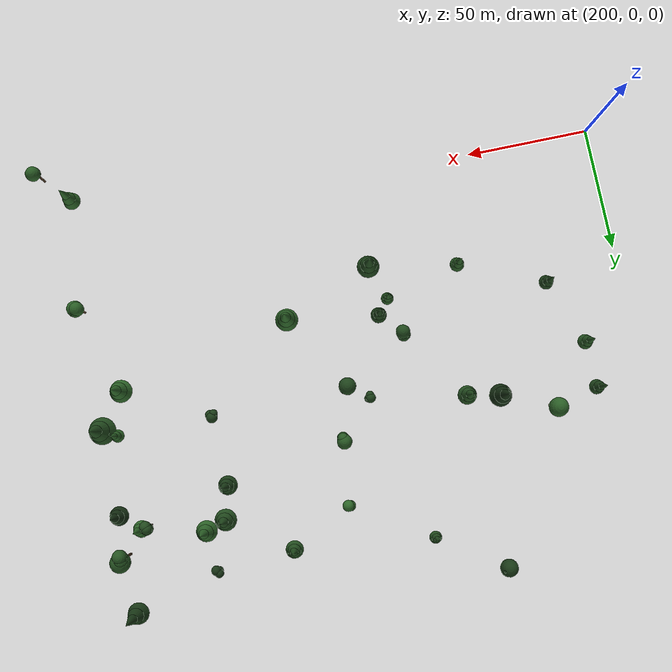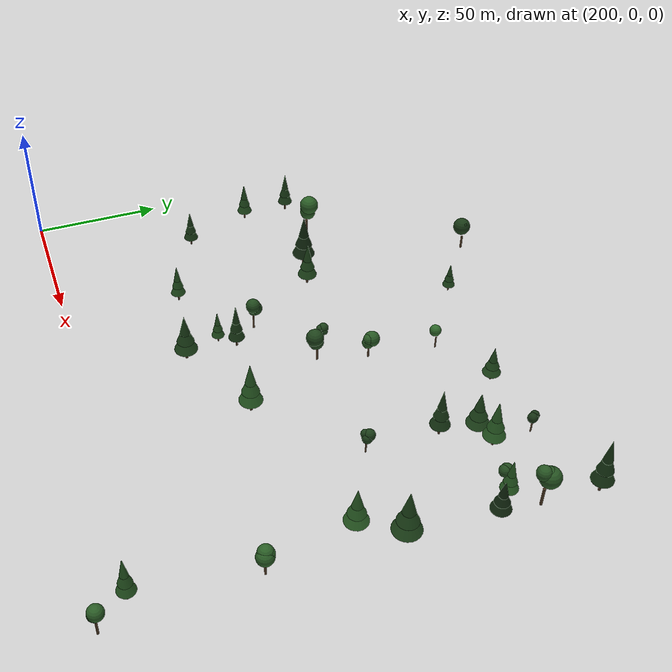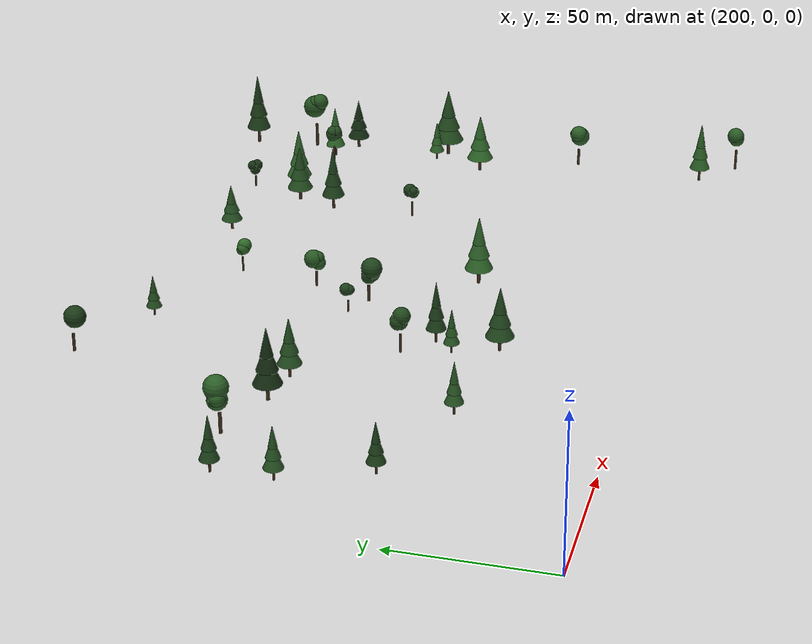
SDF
<sdf version="1.9">
 <world name="detection_world_terrain_train_ir">
  <model name="tree_0">
   <static>true</static>
   <pose>324.40 104.27 10.50 0 0 0.39</pose>
   <link name="link">
    <visual name="trunk">
     <pose>0 0 2.46 0 0 0</pose>
     <geometry><cylinder><radius>0.37</radius><length>4.92</length></cylinder></geometry>
     <material><ambient>0.28 0.2 0.12 1</ambient><diffuse>0.28 0.2 0.12 1</diffuse></material>
    </visual>
    <visual name="canopy0">
     <pose>0.30 -0.73 7.82 0 0 0</pose>
     <geometry><sphere><radius>2.28</radius></sphere></geometry>
     <material><ambient>0.157 0.349 0.140 1</ambient><diffuse>0.157 0.349 0.140 1</diffuse></material>
    </visual>
    <visual name="canopy1">
     <pose>0.46 -0.46 9.49 0 0 0</pose>
     <geometry><sphere><radius>2.21</radius></sphere></geometry>
     <material><ambient>0.157 0.349 0.140 1</ambient><diffuse>0.157 0.349 0.140 1</diffuse></material>
    </visual>
    <visual name="canopy2">
     <pose>0.65 0.83 9.14 0 0 0</pose>
     <geometry><sphere><radius>2.95</radius></sphere></geometry>
     <material><ambient>0.157 0.349 0.140 1</ambient><diffuse>0.157 0.349 0.140 1</diffuse></material>
    </visual>
   </link>
  </model>
  <model name="tree_1">
   <static>true</static>
   <pose>382.52 127.61 16.47 0 0 1.32</pose>
   <link name="link">
    <visual name="trunk">
     <pose>0 0 3.48 0 0 0</pose>
     <geometry><cylinder><radius>0.49</radius><length>6.96</length></cylinder></geometry>
     <material><ambient>0.28 0.2 0.12 1</ambient><diffuse>0.28 0.2 0.12 1</diffuse></material>
    </visual>
    <visual name="canopy0">
     <pose>0 0 8.95 0 0 0</pose>
     <geometry><cone><radius>4.07</radius><length>8.35</length></cone></geometry>
     <material><ambient>0.184 0.409 0.164 1</ambient><diffuse>0.184 0.409 0.164 1</diffuse></material>
    </visual>
    <visual name="canopy1">
     <pose>0 0 12.92 0 0 0</pose>
     <geometry><cone><radius>3.05</radius><length>8.35</length></cone></geometry>
     <material><ambient>0.184 0.409 0.164 1</ambient><diffuse>0.184 0.409 0.164 1</diffuse></material>
    </visual>
    <visual name="canopy2">
     <pose>0 0 16.90 0 0 0</pose>
     <geometry><cone><radius>1.83</radius><length>8.35</length></cone></geometry>
     <material><ambient>0.184 0.409 0.164 1</ambient><diffuse>0.184 0.409 0.164 1</diffuse></material>
    </visual>
   </link>
  </model>
  <model name="tree_2">
   <static>true</static>
   <pose>327.99 130.04 10.75 0 0 2.35</pose>
   <link name="link">
    <visual name="trunk">
     <pose>0 0 2.51 0 0 0</pose>
     <geometry><cylinder><radius>0.29</radius><length>5.02</length></cylinder></geometry>
     <material><ambient>0.28 0.2 0.12 1</ambient><diffuse>0.28 0.2 0.12 1</diffuse></material>
    </visual>
    <visual name="canopy0">
     <pose>-0.04 0.71 8.39 0 0 0</pose>
     <geometry><sphere><radius>2.11</radius></sphere></geometry>
     <material><ambient>0.182 0.406 0.162 1</ambient><diffuse>0.182 0.406 0.162 1</diffuse></material>
    </visual>
    <visual name="canopy1">
     <pose>0.45 0.60 7.94 0 0 0</pose>
     <geometry><sphere><radius>1.74</radius></sphere></geometry>
     <material><ambient>0.182 0.406 0.162 1</ambient><diffuse>0.182 0.406 0.162 1</diffuse></material>
    </visual>
    <visual name="canopy2">
     <pose>-0.64 0.36 9.15 0 0 0</pose>
     <geometry><sphere><radius>2.23</radius></sphere></geometry>
     <material><ambient>0.182 0.406 0.162 1</ambient><diffuse>0.182 0.406 0.162 1</diffuse></material>
    </visual>
   </link>
  </model>
  <model name="tree_3">
   <static>true</static>
   <pose>374.87 125.05 15.91 0 0 2.26</pose>
   <link name="link">
    <visual name="trunk">
     <pose>0 0 3.11 0 0 0</pose>
     <geometry><cylinder><radius>0.51</radius><length>6.23</length></cylinder></geometry>
     <material><ambient>0.28 0.2 0.12 1</ambient><diffuse>0.28 0.2 0.12 1</diffuse></material>
    </visual>
    <visual name="canopy0">
     <pose>0 0 8.01 0 0 0</pose>
     <geometry><cone><radius>4.21</radius><length>7.47</length></cone></geometry>
     <material><ambient>0.138 0.306 0.123 1</ambient><diffuse>0.138 0.306 0.123 1</diffuse></material>
    </visual>
    <visual name="canopy1">
     <pose>0 0 11.57 0 0 0</pose>
     <geometry><cone><radius>3.16</radius><length>7.47</length></cone></geometry>
     <material><ambient>0.138 0.306 0.123 1</ambient><diffuse>0.138 0.306 0.123 1</diffuse></material>
    </visual>
    <visual name="canopy2">
     <pose>0 0 15.13 0 0 0</pose>
     <geometry><cone><radius>1.89</radius><length>7.47</length></cone></geometry>
     <material><ambient>0.138 0.306 0.123 1</ambient><diffuse>0.138 0.306 0.123 1</diffuse></material>
    </visual>
   </link>
  </model>
  <model name="tree_4">
   <static>true</static>
   <pose>273.44 97.40 6.11 0 0 0.81</pose>
   <link name="link">
    <visual name="trunk">
     <pose>0 0 3.23 0 0 0</pose>
     <geometry><cylinder><radius>0.45</radius><length>6.46</length></cylinder></geometry>
     <material><ambient>0.28 0.2 0.12 1</ambient><diffuse>0.28 0.2 0.12 1</diffuse></material>
    </visual>
    <visual name="canopy0">
     <pose>0 0 8.30 0 0 0</pose>
     <geometry><cone><radius>3.77</radius><length>7.75</length></cone></geometry>
     <material><ambient>0.141 0.313 0.125 1</ambient><diffuse>0.141 0.313 0.125 1</diffuse></material>
    </visual>
    <visual name="canopy1">
     <pose>0 0 12.00 0 0 0</pose>
     <geometry><cone><radius>2.83</radius><length>7.75</length></cone></geometry>
     <material><ambient>0.141 0.313 0.125 1</ambient><diffuse>0.141 0.313 0.125 1</diffuse></material>
    </visual>
    <visual name="canopy2">
     <pose>0 0 15.69 0 0 0</pose>
     <geometry><cone><radius>1.70</radius><length>7.75</length></cone></geometry>
     <material><ambient>0.141 0.313 0.125 1</ambient><diffuse>0.141 0.313 0.125 1</diffuse></material>
    </visual>
   </link>
  </model>
  <model name="tree_5">
   <static>true</static>
   <pose>351.71 141.62 13.55 0 0 1.71</pose>
   <link name="link">
    <visual name="trunk">
     <pose>0 0 2.56 0 0 0</pose>
     <geometry><cylinder><radius>0.41</radius><length>5.13</length></cylinder></geometry>
     <material><ambient>0.28 0.2 0.12 1</ambient><diffuse>0.28 0.2 0.12 1</diffuse></material>
    </visual>
    <visual name="canopy0">
     <pose>0 0 6.59 0 0 0</pose>
     <geometry><cone><radius>3.41</radius><length>6.15</length></cone></geometry>
     <material><ambient>0.143 0.319 0.128 1</ambient><diffuse>0.143 0.319 0.128 1</diffuse></material>
    </visual>
    <visual name="canopy1">
     <pose>0 0 9.52 0 0 0</pose>
     <geometry><cone><radius>2.56</radius><length>6.15</length></cone></geometry>
     <material><ambient>0.143 0.319 0.128 1</ambient><diffuse>0.143 0.319 0.128 1</diffuse></material>
    </visual>
    <visual name="canopy2">
     <pose>0 0 12.45 0 0 0</pose>
     <geometry><cone><radius>1.53</radius><length>6.15</length></cone></geometry>
     <material><ambient>0.143 0.319 0.128 1</ambient><diffuse>0.143 0.319 0.128 1</diffuse></material>
    </visual>
   </link>
  </model>
  <model name="tree_6">
   <static>true</static>
   <pose>221.95 86.11 2.88 0 0 4.58</pose>
   <link name="link">
    <visual name="trunk">
     <pose>0 0 2.89 0 0 0</pose>
     <geometry><cylinder><radius>0.36</radius><length>5.79</length></cylinder></geometry>
     <material><ambient>0.28 0.2 0.12 1</ambient><diffuse>0.28 0.2 0.12 1</diffuse></material>
    </visual>
    <visual name="canopy0">
     <pose>0 0 7.44 0 0 0</pose>
     <geometry><cone><radius>3.01</radius><length>6.95</length></cone></geometry>
     <material><ambient>0.149 0.332 0.133 1</ambient><diffuse>0.149 0.332 0.133 1</diffuse></material>
    </visual>
    <visual name="canopy1">
     <pose>0 0 10.75 0 0 0</pose>
     <geometry><cone><radius>2.26</radius><length>6.95</length></cone></geometry>
     <material><ambient>0.149 0.332 0.133 1</ambient><diffuse>0.149 0.332 0.133 1</diffuse></material>
    </visual>
    <visual name="canopy2">
     <pose>0 0 14.06 0 0 0</pose>
     <geometry><cone><radius>1.35</radius><length>6.95</length></cone></geometry>
     <material><ambient>0.149 0.332 0.133 1</ambient><diffuse>0.149 0.332 0.133 1</diffuse></material>
    </visual>
   </link>
  </model>
  <model name="tree_8">
   <static>true</static>
   <pose>380.99 142.86 16.07 0 0 4.55</pose>
   <link name="link">
    <visual name="trunk">
     <pose>0 0 1.87 0 0 0</pose>
     <geometry><cylinder><radius>0.30</radius><length>3.74</length></cylinder></geometry>
     <material><ambient>0.28 0.2 0.12 1</ambient><diffuse>0.28 0.2 0.12 1</diffuse></material>
    </visual>
    <visual name="canopy0">
     <pose>0.41 0.51 7.64 0 0 0</pose>
     <geometry><sphere><radius>1.86</radius></sphere></geometry>
     <material><ambient>0.091 0.202 0.081 1</ambient><diffuse>0.091 0.202 0.081 1</diffuse></material>
    </visual>
    <visual name="canopy1">
     <pose>-0.64 -0.62 7.58 0 0 0</pose>
     <geometry><sphere><radius>1.71</radius></sphere></geometry>
     <material><ambient>0.091 0.202 0.081 1</ambient><diffuse>0.091 0.202 0.081 1</diffuse></material>
    </visual>
    <visual name="canopy2">
     <pose>0.05 -0.35 6.32 0 0 0</pose>
     <geometry><sphere><radius>1.76</radius></sphere></geometry>
     <material><ambient>0.091 0.202 0.081 1</ambient><diffuse>0.091 0.202 0.081 1</diffuse></material>
    </visual>
   </link>
  </model>
  <model name="tree_13">
   <static>true</static>
   <pose>272.69 165.85 6.06 0 0 3.37</pose>
   <link name="link">
    <visual name="trunk">
     <pose>0 0 2.90 0 0 0</pose>
     <geometry><cylinder><radius>0.44</radius><length>5.79</length></cylinder></geometry>
     <material><ambient>0.28 0.2 0.12 1</ambient><diffuse>0.28 0.2 0.12 1</diffuse></material>
    </visual>
    <visual name="canopy0">
     <pose>-0.51 0.04 11.99 0 0 0</pose>
     <geometry><sphere><radius>2.22</radius></sphere></geometry>
     <material><ambient>0.104 0.231 0.092 1</ambient><diffuse>0.104 0.231 0.092 1</diffuse></material>
    </visual>
    <visual name="canopy1">
     <pose>-0.06 0.89 11.63 0 0 0</pose>
     <geometry><sphere><radius>3.45</radius></sphere></geometry>
     <material><ambient>0.104 0.231 0.092 1</ambient><diffuse>0.104 0.231 0.092 1</diffuse></material>
    </visual>
    <visual name="canopy2">
     <pose>-0.88 0.89 12.56 0 0 0</pose>
     <geometry><sphere><radius>2.22</radius></sphere></geometry>
     <material><ambient>0.104 0.231 0.092 1</ambient><diffuse>0.104 0.231 0.092 1</diffuse></material>
    </visual>
   </link>
  </model>
  <model name="tree_15">
   <static>true</static>
   <pose>371.53 112.39 15.48 0 0 2.10</pose>
   <link name="link">
    <visual name="trunk">
     <pose>0 0 3.54 0 0 0</pose>
     <geometry><cylinder><radius>0.44</radius><length>7.08</length></cylinder></geometry>
     <material><ambient>0.28 0.2 0.12 1</ambient><diffuse>0.28 0.2 0.12 1</diffuse></material>
    </visual>
    <visual name="canopy0">
     <pose>0 0 9.10 0 0 0</pose>
     <geometry><cone><radius>3.70</radius><length>8.50</length></cone></geometry>
     <material><ambient>0.116 0.257 0.103 1</ambient><diffuse>0.116 0.257 0.103 1</diffuse></material>
    </visual>
    <visual name="canopy1">
     <pose>0 0 13.15 0 0 0</pose>
     <geometry><cone><radius>2.77</radius><length>8.50</length></cone></geometry>
     <material><ambient>0.116 0.257 0.103 1</ambient><diffuse>0.116 0.257 0.103 1</diffuse></material>
    </visual>
    <visual name="canopy2">
     <pose>0 0 17.20 0 0 0</pose>
     <geometry><cone><radius>1.66</radius><length>8.50</length></cone></geometry>
     <material><ambient>0.116 0.257 0.103 1</ambient><diffuse>0.116 0.257 0.103 1</diffuse></material>
    </visual>
   </link>
  </model>
  <model name="tree_20">
   <static>true</static>
   <pose>301.43 39.69 7.95 0 0 2.02</pose>
   <link name="link">
    <visual name="trunk">
     <pose>0 0 3.49 0 0 0</pose>
     <geometry><cylinder><radius>0.53</radius><length>6.99</length></cylinder></geometry>
     <material><ambient>0.28 0.2 0.12 1</ambient><diffuse>0.28 0.2 0.12 1</diffuse></material>
    </visual>
    <visual name="canopy0">
     <pose>0 0 8.98 0 0 0</pose>
     <geometry><cone><radius>4.44</radius><length>8.38</length></cone></geometry>
     <material><ambient>0.127 0.282 0.113 1</ambient><diffuse>0.127 0.282 0.113 1</diffuse></material>
    </visual>
    <visual name="canopy1">
     <pose>0 0 12.98 0 0 0</pose>
     <geometry><cone><radius>3.33</radius><length>8.38</length></cone></geometry>
     <material><ambient>0.127 0.282 0.113 1</ambient><diffuse>0.127 0.282 0.113 1</diffuse></material>
    </visual>
    <visual name="canopy2">
     <pose>0 0 16.97 0 0 0</pose>
     <geometry><cone><radius>2.00</radius><length>8.38</length></cone></geometry>
     <material><ambient>0.127 0.282 0.113 1</ambient><diffuse>0.127 0.282 0.113 1</diffuse></material>
    </visual>
   </link>
  </model>
  <model name="tree_21">
   <static>true</static>
   <pose>371.61 85.12 15.74 0 0 2.02</pose>
   <link name="link">
    <visual name="trunk">
     <pose>0 0 2.46 0 0 0</pose>
     <geometry><cylinder><radius>0.30</radius><length>4.91</length></cylinder></geometry>
     <material><ambient>0.28 0.2 0.12 1</ambient><diffuse>0.28 0.2 0.12 1</diffuse></material>
    </visual>
    <visual name="canopy0">
     <pose>-0.47 -0.75 8.15 0 0 0</pose>
     <geometry><sphere><radius>1.95</radius></sphere></geometry>
     <material><ambient>0.108 0.240 0.096 1</ambient><diffuse>0.108 0.240 0.096 1</diffuse></material>
    </visual>
    <visual name="canopy1">
     <pose>-0.10 0.59 9.05 0 0 0</pose>
     <geometry><sphere><radius>1.66</radius></sphere></geometry>
     <material><ambient>0.108 0.240 0.096 1</ambient><diffuse>0.108 0.240 0.096 1</diffuse></material>
    </visual>
    <visual name="canopy2">
     <pose>0.65 -0.65 8.92 0 0 0</pose>
     <geometry><sphere><radius>2.18</radius></sphere></geometry>
     <material><ambient>0.108 0.240 0.096 1</ambient><diffuse>0.108 0.240 0.096 1</diffuse></material>
    </visual>
   </link>
  </model>
  <model name="tree_22">
   <static>true</static>
   <pose>412.79 82.79 21.17 0 0 0.90</pose>
   <link name="link">
    <visual name="trunk">
     <pose>0 0 3.87 0 0 0</pose>
     <geometry><cylinder><radius>0.62</radius><length>7.73</length></cylinder></geometry>
     <material><ambient>0.28 0.2 0.12 1</ambient><diffuse>0.28 0.2 0.12 1</diffuse></material>
    </visual>
    <visual name="canopy0">
     <pose>0 0 9.94 0 0 0</pose>
     <geometry><cone><radius>5.16</radius><length>9.28</length></cone></geometry>
     <material><ambient>0.137 0.303 0.121 1</ambient><diffuse>0.137 0.303 0.121 1</diffuse></material>
    </visual>
    <visual name="canopy1">
     <pose>0 0 14.36 0 0 0</pose>
     <geometry><cone><radius>3.87</radius><length>9.28</length></cone></geometry>
     <material><ambient>0.137 0.303 0.121 1</ambient><diffuse>0.137 0.303 0.121 1</diffuse></material>
    </visual>
    <visual name="canopy2">
     <pose>0 0 18.77 0 0 0</pose>
     <geometry><cone><radius>2.32</radius><length>9.28</length></cone></geometry>
     <material><ambient>0.137 0.303 0.121 1</ambient><diffuse>0.137 0.303 0.121 1</diffuse></material>
    </visual>
   </link>
  </model>
  <model name="tree_23">
   <static>true</static>
   <pose>240.82 108.10 3.84 0 0 3.57</pose>
   <link name="link">
    <visual name="trunk">
     <pose>0 0 3.35 0 0 0</pose>
     <geometry><cylinder><radius>0.51</radius><length>6.70</length></cylinder></geometry>
     <material><ambient>0.28 0.2 0.12 1</ambient><diffuse>0.28 0.2 0.12 1</diffuse></material>
    </visual>
    <visual name="canopy0">
     <pose>-0.67 -0.73 14.69 0 0 0</pose>
     <geometry><sphere><radius>3.80</radius></sphere></geometry>
     <material><ambient>0.167 0.370 0.148 1</ambient><diffuse>0.167 0.370 0.148 1</diffuse></material>
    </visual>
    <visual name="canopy1">
     <pose>-0.16 -0.59 10.91 0 0 0</pose>
     <geometry><sphere><radius>3.15</radius></sphere></geometry>
     <material><ambient>0.167 0.370 0.148 1</ambient><diffuse>0.167 0.370 0.148 1</diffuse></material>
    </visual>
    <visual name="canopy2">
     <pose>1.04 -0.76 12.05 0 0 0</pose>
     <geometry><sphere><radius>2.60</radius></sphere></geometry>
     <material><ambient>0.167 0.370 0.148 1</ambient><diffuse>0.167 0.370 0.148 1</diffuse></material>
    </visual>
   </link>
  </model>
  <model name="tree_24">
   <static>true</static>
   <pose>232.02 59.46 2.93 0 0 5.61</pose>
   <link name="link">
    <visual name="trunk">
     <pose>0 0 2.79 0 0 0</pose>
     <geometry><cylinder><radius>0.35</radius><length>5.57</length></cylinder></geometry>
     <material><ambient>0.28 0.2 0.12 1</ambient><diffuse>0.28 0.2 0.12 1</diffuse></material>
    </visual>
    <visual name="canopy0">
     <pose>0 0 7.17 0 0 0</pose>
     <geometry><cone><radius>2.88</radius><length>6.69</length></cone></geometry>
     <material><ambient>0.114 0.253 0.101 1</ambient><diffuse>0.114 0.253 0.101 1</diffuse></material>
    </visual>
    <visual name="canopy1">
     <pose>0 0 10.35 0 0 0</pose>
     <geometry><cone><radius>2.16</radius><length>6.69</length></cone></geometry>
     <material><ambient>0.114 0.253 0.101 1</ambient><diffuse>0.114 0.253 0.101 1</diffuse></material>
    </visual>
    <visual name="canopy2">
     <pose>0 0 13.54 0 0 0</pose>
     <geometry><cone><radius>1.30</radius><length>6.69</length></cone></geometry>
     <material><ambient>0.114 0.253 0.101 1</ambient><diffuse>0.114 0.253 0.101 1</diffuse></material>
    </visual>
   </link>
  </model>
  <model name="tree_25">
   <static>true</static>
   <pose>408.15 85.67 20.79 0 0 5.92</pose>
   <link name="link">
    <visual name="trunk">
     <pose>0 0 2.26 0 0 0</pose>
     <geometry><cylinder><radius>0.29</radius><length>4.52</length></cylinder></geometry>
     <material><ambient>0.28 0.2 0.12 1</ambient><diffuse>0.28 0.2 0.12 1</diffuse></material>
    </visual>
    <visual name="canopy0">
     <pose>0 0 5.81 0 0 0</pose>
     <geometry><cone><radius>2.44</radius><length>5.42</length></cone></geometry>
     <material><ambient>0.176 0.390 0.156 1</ambient><diffuse>0.176 0.390 0.156 1</diffuse></material>
    </visual>
    <visual name="canopy1">
     <pose>0 0 8.39 0 0 0</pose>
     <geometry><cone><radius>1.83</radius><length>5.42</length></cone></geometry>
     <material><ambient>0.176 0.390 0.156 1</ambient><diffuse>0.176 0.390 0.156 1</diffuse></material>
    </visual>
    <visual name="canopy2">
     <pose>0 0 10.98 0 0 0</pose>
     <geometry><cone><radius>1.10</radius><length>5.42</length></cone></geometry>
     <material><ambient>0.176 0.390 0.156 1</ambient><diffuse>0.176 0.390 0.156 1</diffuse></material>
    </visual>
   </link>
  </model>
  <model name="tree_26">
   <static>true</static>
   <pose>266.00 45.36 4.84 0 0 4.91</pose>
   <link name="link">
    <visual name="trunk">
     <pose>0 0 2.87 0 0 0</pose>
     <geometry><cylinder><radius>0.35</radius><length>5.73</length></cylinder></geometry>
     <material><ambient>0.28 0.2 0.12 1</ambient><diffuse>0.28 0.2 0.12 1</diffuse></material>
    </visual>
    <visual name="canopy0">
     <pose>0 0 7.37 0 0 0</pose>
     <geometry><cone><radius>2.88</radius><length>6.88</length></cone></geometry>
     <material><ambient>0.159 0.353 0.141 1</ambient><diffuse>0.159 0.353 0.141 1</diffuse></material>
    </visual>
    <visual name="canopy1">
     <pose>0 0 10.65 0 0 0</pose>
     <geometry><cone><radius>2.16</radius><length>6.88</length></cone></geometry>
     <material><ambient>0.159 0.353 0.141 1</ambient><diffuse>0.159 0.353 0.141 1</diffuse></material>
    </visual>
    <visual name="canopy2">
     <pose>0 0 13.92 0 0 0</pose>
     <geometry><cone><radius>1.30</radius><length>6.88</length></cone></geometry>
     <material><ambient>0.159 0.353 0.141 1</ambient><diffuse>0.159 0.353 0.141 1</diffuse></material>
    </visual>
   </link>
  </model>
  <model name="tree_27">
   <static>true</static>
   <pose>407.89 -5.38 22.88 0 0 4.82</pose>
   <link name="link">
    <visual name="trunk">
     <pose>0 0 3.33 0 0 0</pose>
     <geometry><cylinder><radius>0.39</radius><length>6.67</length></cylinder></geometry>
     <material><ambient>0.28 0.2 0.12 1</ambient><diffuse>0.28 0.2 0.12 1</diffuse></material>
    </visual>
    <visual name="canopy0">
     <pose>0 0 8.57 0 0 0</pose>
     <geometry><cone><radius>3.25</radius><length>8.00</length></cone></geometry>
     <material><ambient>0.176 0.391 0.156 1</ambient><diffuse>0.176 0.391 0.156 1</diffuse></material>
    </visual>
    <visual name="canopy1">
     <pose>0 0 12.38 0 0 0</pose>
     <geometry><cone><radius>2.44</radius><length>8.00</length></cone></geometry>
     <material><ambient>0.176 0.391 0.156 1</ambient><diffuse>0.176 0.391 0.156 1</diffuse></material>
    </visual>
    <visual name="canopy2">
     <pose>0 0 16.19 0 0 0</pose>
     <geometry><cone><radius>1.46</radius><length>8.00</length></cone></geometry>
     <material><ambient>0.176 0.391 0.156 1</ambient><diffuse>0.176 0.391 0.156 1</diffuse></material>
    </visual>
   </link>
  </model>
  <model name="tree_29">
   <static>true</static>
   <pose>405.98 121.65 19.24 0 0 3.02</pose>
   <link name="link">
    <visual name="trunk">
     <pose>0 0 2.91 0 0 0</pose>
     <geometry><cylinder><radius>0.38</radius><length>5.82</length></cylinder></geometry>
     <material><ambient>0.28 0.2 0.12 1</ambient><diffuse>0.28 0.2 0.12 1</diffuse></material>
    </visual>
    <visual name="canopy0">
     <pose>0 0 7.48 0 0 0</pose>
     <geometry><cone><radius>3.20</radius><length>6.98</length></cone></geometry>
     <material><ambient>0.187 0.415 0.166 1</ambient><diffuse>0.187 0.415 0.166 1</diffuse></material>
    </visual>
    <visual name="canopy1">
     <pose>0 0 10.81 0 0 0</pose>
     <geometry><cone><radius>2.40</radius><length>6.98</length></cone></geometry>
     <material><ambient>0.187 0.415 0.166 1</ambient><diffuse>0.187 0.415 0.166 1</diffuse></material>
    </visual>
    <visual name="canopy2">
     <pose>0 0 14.13 0 0 0</pose>
     <geometry><cone><radius>1.44</radius><length>6.98</length></cone></geometry>
     <material><ambient>0.187 0.415 0.166 1</ambient><diffuse>0.187 0.415 0.166 1</diffuse></material>
    </visual>
   </link>
  </model>
  <model name="tree_33">
   <static>true</static>
   <pose>403.65 69.39 20.39 0 0 4.82</pose>
   <link name="link">
    <visual name="trunk">
     <pose>0 0 3.26 0 0 0</pose>
     <geometry><cylinder><radius>0.52</radius><length>6.52</length></cylinder></geometry>
     <material><ambient>0.28 0.2 0.12 1</ambient><diffuse>0.28 0.2 0.12 1</diffuse></material>
    </visual>
    <visual name="canopy0">
     <pose>0 0 8.38 0 0 0</pose>
     <geometry><cone><radius>4.32</radius><length>7.82</length></cone></geometry>
     <material><ambient>0.184 0.408 0.163 1</ambient><diffuse>0.184 0.408 0.163 1</diffuse></material>
    </visual>
    <visual name="canopy1">
     <pose>0 0 12.11 0 0 0</pose>
     <geometry><cone><radius>3.24</radius><length>7.82</length></cone></geometry>
     <material><ambient>0.184 0.408 0.163 1</ambient><diffuse>0.184 0.408 0.163 1</diffuse></material>
    </visual>
    <visual name="canopy2">
     <pose>0 0 15.83 0 0 0</pose>
     <geometry><cone><radius>1.94</radius><length>7.82</length></cone></geometry>
     <material><ambient>0.184 0.408 0.163 1</ambient><diffuse>0.184 0.408 0.163 1</diffuse></material>
    </visual>
   </link>
  </model>
  <model name="tree_35">
   <static>true</static>
   <pose>221.57 104.69 2.98 0 0 3.84</pose>
   <link name="link">
    <visual name="trunk">
     <pose>0 0 3.02 0 0 0</pose>
     <geometry><cylinder><radius>0.36</radius><length>6.04</length></cylinder></geometry>
     <material><ambient>0.28 0.2 0.12 1</ambient><diffuse>0.28 0.2 0.12 1</diffuse></material>
    </visual>
    <visual name="canopy0">
     <pose>0 0 7.77 0 0 0</pose>
     <geometry><cone><radius>2.97</radius><length>7.25</length></cone></geometry>
     <material><ambient>0.122 0.272 0.109 1</ambient><diffuse>0.122 0.272 0.109 1</diffuse></material>
    </visual>
    <visual name="canopy1">
     <pose>0 0 11.22 0 0 0</pose>
     <geometry><cone><radius>2.23</radius><length>7.25</length></cone></geometry>
     <material><ambient>0.122 0.272 0.109 1</ambient><diffuse>0.122 0.272 0.109 1</diffuse></material>
    </visual>
    <visual name="canopy2">
     <pose>0 0 14.67 0 0 0</pose>
     <geometry><cone><radius>1.34</radius><length>7.25</length></cone></geometry>
     <material><ambient>0.122 0.272 0.109 1</ambient><diffuse>0.122 0.272 0.109 1</diffuse></material>
    </visual>
   </link>
  </model>
  <model name="tree_38">
   <static>true</static>
   <pose>311.85 90.34 9.37 0 0 1.85</pose>
   <link name="link">
    <visual name="trunk">
     <pose>0 0 1.98 0 0 0</pose>
     <geometry><cylinder><radius>0.29</radius><length>3.96</length></cylinder></geometry>
     <material><ambient>0.28 0.2 0.12 1</ambient><diffuse>0.28 0.2 0.12 1</diffuse></material>
    </visual>
    <visual name="canopy0">
     <pose>0.62 0.32 7.88 0 0 0</pose>
     <geometry><sphere><radius>1.99</radius></sphere></geometry>
     <material><ambient>0.113 0.251 0.101 1</ambient><diffuse>0.113 0.251 0.101 1</diffuse></material>
    </visual>
    <visual name="canopy1">
     <pose>0.38 -0.62 7.13 0 0 0</pose>
     <geometry><sphere><radius>1.47</radius></sphere></geometry>
     <material><ambient>0.113 0.251 0.101 1</ambient><diffuse>0.113 0.251 0.101 1</diffuse></material>
    </visual>
    <visual name="canopy2">
     <pose>-0.50 0.61 7.83 0 0 0</pose>
     <geometry><sphere><radius>1.60</radius></sphere></geometry>
     <material><ambient>0.113 0.251 0.101 1</ambient><diffuse>0.113 0.251 0.101 1</diffuse></material>
    </visual>
   </link>
  </model>
  <model name="tree_44">
   <static>true</static>
   <pose>337.18 54.46 11.42 0 0 0.69</pose>
   <link name="link">
    <visual name="trunk">
     <pose>0 0 3.77 0 0 0</pose>
     <geometry><cylinder><radius>0.53</radius><length>7.55</length></cylinder></geometry>
     <material><ambient>0.28 0.2 0.12 1</ambient><diffuse>0.28 0.2 0.12 1</diffuse></material>
    </visual>
    <visual name="canopy0">
     <pose>0 0 9.70 0 0 0</pose>
     <geometry><cone><radius>4.44</radius><length>9.06</length></cone></geometry>
     <material><ambient>0.181 0.402 0.161 1</ambient><diffuse>0.181 0.402 0.161 1</diffuse></material>
    </visual>
    <visual name="canopy1">
     <pose>0 0 14.01 0 0 0</pose>
     <geometry><cone><radius>3.33</radius><length>9.06</length></cone></geometry>
     <material><ambient>0.181 0.402 0.161 1</ambient><diffuse>0.181 0.402 0.161 1</diffuse></material>
    </visual>
    <visual name="canopy2">
     <pose>0 0 18.33 0 0 0</pose>
     <geometry><cone><radius>2.00</radius><length>9.06</length></cone></geometry>
     <material><ambient>0.181 0.402 0.161 1</ambient><diffuse>0.181 0.402 0.161 1</diffuse></material>
    </visual>
   </link>
  </model>
  <model name="tree_46">
   <static>true</static>
   <pose>296.51 53.48 7.83 0 0 3.81</pose>
   <link name="link">
    <visual name="trunk">
     <pose>0 0 2.44 0 0 0</pose>
     <geometry><cylinder><radius>0.29</radius><length>4.87</length></cylinder></geometry>
     <material><ambient>0.28 0.2 0.12 1</ambient><diffuse>0.28 0.2 0.12 1</diffuse></material>
    </visual>
    <visual name="canopy0">
     <pose>0 0 6.26 0 0 0</pose>
     <geometry><cone><radius>2.45</radius><length>5.85</length></cone></geometry>
     <material><ambient>0.158 0.351 0.140 1</ambient><diffuse>0.158 0.351 0.140 1</diffuse></material>
    </visual>
    <visual name="canopy1">
     <pose>0 0 9.05 0 0 0</pose>
     <geometry><cone><radius>1.84</radius><length>5.85</length></cone></geometry>
     <material><ambient>0.158 0.351 0.140 1</ambient><diffuse>0.158 0.351 0.140 1</diffuse></material>
    </visual>
    <visual name="canopy2">
     <pose>0 0 11.83 0 0 0</pose>
     <geometry><cone><radius>1.10</radius><length>5.85</length></cone></geometry>
     <material><ambient>0.158 0.351 0.140 1</ambient><diffuse>0.158 0.351 0.140 1</diffuse></material>
    </visual>
   </link>
  </model>
  <model name="tree_53">
   <static>true</static>
   <pose>402.80 121.19 18.92 0 0 4.94</pose>
   <link name="link">
    <visual name="trunk">
     <pose>0 0 2.53 0 0 0</pose>
     <geometry><cylinder><radius>0.31</radius><length>5.07</length></cylinder></geometry>
     <material><ambient>0.28 0.2 0.12 1</ambient><diffuse>0.28 0.2 0.12 1</diffuse></material>
    </visual>
    <visual name="canopy0">
     <pose>0.51 0.23 10.22 0 0 0</pose>
     <geometry><sphere><radius>2.19</radius></sphere></geometry>
     <material><ambient>0.131 0.290 0.116 1</ambient><diffuse>0.131 0.290 0.116 1</diffuse></material>
    </visual>
    <visual name="canopy1">
     <pose>-0.44 0.10 9.51 0 0 0</pose>
     <geometry><sphere><radius>2.35</radius></sphere></geometry>
     <material><ambient>0.131 0.290 0.116 1</ambient><diffuse>0.131 0.290 0.116 1</diffuse></material>
    </visual>
    <visual name="canopy2">
     <pose>-0.30 0.07 10.25 0 0 0</pose>
     <geometry><sphere><radius>2.19</radius></sphere></geometry>
     <material><ambient>0.131 0.290 0.116 1</ambient><diffuse>0.131 0.290 0.116 1</diffuse></material>
    </visual>
   </link>
  </model>
  <model name="tree_55">
   <static>true</static>
   <pose>412.09 36.69 22.36 0 0 1.73</pose>
   <link name="link">
    <visual name="trunk">
     <pose>0 0 2.78 0 0 0</pose>
     <geometry><cylinder><radius>0.42</radius><length>5.55</length></cylinder></geometry>
     <material><ambient>0.28 0.2 0.12 1</ambient><diffuse>0.28 0.2 0.12 1</diffuse></material>
    </visual>
    <visual name="canopy0">
     <pose>0.85 -0.65 10.80 0 0 0</pose>
     <geometry><sphere><radius>2.21</radius></sphere></geometry>
     <material><ambient>0.168 0.374 0.150 1</ambient><diffuse>0.168 0.374 0.150 1</diffuse></material>
    </visual>
    <visual name="canopy1">
     <pose>0.17 -0.06 11.07 0 0 0</pose>
     <geometry><sphere><radius>2.78</radius></sphere></geometry>
     <material><ambient>0.168 0.374 0.150 1</ambient><diffuse>0.168 0.374 0.150 1</diffuse></material>
    </visual>
    <visual name="canopy2">
     <pose>-0.33 -0.76 10.00 0 0 0</pose>
     <geometry><sphere><radius>3.09</radius></sphere></geometry>
     <material><ambient>0.168 0.374 0.150 1</ambient><diffuse>0.168 0.374 0.150 1</diffuse></material>
    </visual>
   </link>
  </model>
  <model name="tree_56">
   <static>true</static>
   <pose>413.11 115.19 20.19 0 0 4.84</pose>
   <link name="link">
    <visual name="trunk">
     <pose>0 0 2.86 0 0 0</pose>
     <geometry><cylinder><radius>0.44</radius><length>5.72</length></cylinder></geometry>
     <material><ambient>0.28 0.2 0.12 1</ambient><diffuse>0.28 0.2 0.12 1</diffuse></material>
    </visual>
    <visual name="canopy0">
     <pose>0 0 7.35 0 0 0</pose>
     <geometry><cone><radius>3.66</radius><length>6.86</length></cone></geometry>
     <material><ambient>0.082 0.182 0.073 1</ambient><diffuse>0.082 0.182 0.073 1</diffuse></material>
    </visual>
    <visual name="canopy1">
     <pose>0 0 10.62 0 0 0</pose>
     <geometry><cone><radius>2.74</radius><length>6.86</length></cone></geometry>
     <material><ambient>0.082 0.182 0.073 1</ambient><diffuse>0.082 0.182 0.073 1</diffuse></material>
    </visual>
    <visual name="canopy2">
     <pose>0 0 13.88 0 0 0</pose>
     <geometry><cone><radius>1.65</radius><length>6.86</length></cone></geometry>
     <material><ambient>0.082 0.182 0.073 1</ambient><diffuse>0.082 0.182 0.073 1</diffuse></material>
    </visual>
   </link>
  </model>
  <model name="tree_57">
   <static>true</static>
   <pose>301.34 59.48 8.20 0 0 3.85</pose>
   <link name="link">
    <visual name="trunk">
     <pose>0 0 3.34 0 0 0</pose>
     <geometry><cylinder><radius>0.38</radius><length>6.68</length></cylinder></geometry>
     <material><ambient>0.28 0.2 0.12 1</ambient><diffuse>0.28 0.2 0.12 1</diffuse></material>
    </visual>
    <visual name="canopy0">
     <pose>0 0 8.59 0 0 0</pose>
     <geometry><cone><radius>3.14</radius><length>8.02</length></cone></geometry>
     <material><ambient>0.112 0.248 0.099 1</ambient><diffuse>0.112 0.248 0.099 1</diffuse></material>
    </visual>
    <visual name="canopy1">
     <pose>0 0 12.41 0 0 0</pose>
     <geometry><cone><radius>2.36</radius><length>8.02</length></cone></geometry>
     <material><ambient>0.112 0.248 0.099 1</ambient><diffuse>0.112 0.248 0.099 1</diffuse></material>
    </visual>
    <visual name="canopy2">
     <pose>0 0 16.23 0 0 0</pose>
     <geometry><cone><radius>1.41</radius><length>8.02</length></cone></geometry>
     <material><ambient>0.112 0.248 0.099 1</ambient><diffuse>0.112 0.248 0.099 1</diffuse></material>
    </visual>
   </link>
  </model>
  <model name="tree_59">
   <static>true</static>
   <pose>319.34 85.72 9.92 0 0 3.97</pose>
   <link name="link">
    <visual name="trunk">
     <pose>0 0 2.72 0 0 0</pose>
     <geometry><cylinder><radius>0.44</radius><length>5.43</length></cylinder></geometry>
     <material><ambient>0.28 0.2 0.12 1</ambient><diffuse>0.28 0.2 0.12 1</diffuse></material>
    </visual>
    <visual name="canopy0">
     <pose>0.73 0.69 11.45 0 0 0</pose>
     <geometry><sphere><radius>3.36</radius></sphere></geometry>
     <material><ambient>0.118 0.263 0.105 1</ambient><diffuse>0.118 0.263 0.105 1</diffuse></material>
    </visual>
    <visual name="canopy1">
     <pose>0.23 0.84 9.59 0 0 0</pose>
     <geometry><sphere><radius>2.84</radius></sphere></geometry>
     <material><ambient>0.118 0.263 0.105 1</ambient><diffuse>0.118 0.263 0.105 1</diffuse></material>
    </visual>
    <visual name="canopy2">
     <pose>0.15 0.07 8.77 0 0 0</pose>
     <geometry><sphere><radius>2.52</radius></sphere></geometry>
     <material><ambient>0.118 0.263 0.105 1</ambient><diffuse>0.118 0.263 0.105 1</diffuse></material>
    </visual>
   </link>
  </model>
  <model name="tree_60">
   <static>true</static>
   <pose>293.43 68.62 7.61 0 0 1.65</pose>
   <link name="link">
    <visual name="trunk">
     <pose>0 0 3.10 0 0 0</pose>
     <geometry><cylinder><radius>0.36</radius><length>6.21</length></cylinder></geometry>
     <material><ambient>0.28 0.2 0.12 1</ambient><diffuse>0.28 0.2 0.12 1</diffuse></material>
    </visual>
    <visual name="canopy0">
     <pose>0.77 -0.34 10.16 0 0 0</pose>
     <geometry><sphere><radius>2.63</radius></sphere></geometry>
     <material><ambient>0.129 0.287 0.115 1</ambient><diffuse>0.129 0.287 0.115 1</diffuse></material>
    </visual>
    <visual name="canopy1">
     <pose>-0.24 -0.55 12.03 0 0 0</pose>
     <geometry><sphere><radius>2.78</radius></sphere></geometry>
     <material><ambient>0.129 0.287 0.115 1</ambient><diffuse>0.129 0.287 0.115 1</diffuse></material>
    </visual>
    <visual name="canopy2">
     <pose>0.11 -0.52 9.80 0 0 0</pose>
     <geometry><sphere><radius>2.26</radius></sphere></geometry>
     <material><ambient>0.129 0.287 0.115 1</ambient><diffuse>0.129 0.287 0.115 1</diffuse></material>
    </visual>
   </link>
  </model>
  <model name="tree_61">
   <static>true</static>
   <pose>412.66 130.33 19.41 0 0 0.58</pose>
   <link name="link">
    <visual name="trunk">
     <pose>0 0 3.99 0 0 0</pose>
     <geometry><cylinder><radius>0.50</radius><length>7.98</length></cylinder></geometry>
     <material><ambient>0.28 0.2 0.12 1</ambient><diffuse>0.28 0.2 0.12 1</diffuse></material>
    </visual>
    <visual name="canopy0">
     <pose>0.13 0.08 15.62 0 0 0</pose>
     <geometry><sphere><radius>2.81</radius></sphere></geometry>
     <material><ambient>0.150 0.333 0.133 1</ambient><diffuse>0.150 0.333 0.133 1</diffuse></material>
    </visual>
    <visual name="canopy1">
     <pose>-0.86 -1.11 16.46 0 0 0</pose>
     <geometry><sphere><radius>2.74</radius></sphere></geometry>
     <material><ambient>0.150 0.333 0.133 1</ambient><diffuse>0.150 0.333 0.133 1</diffuse></material>
    </visual>
    <visual name="canopy2">
     <pose>0.91 0.37 14.28 0 0 0</pose>
     <geometry><sphere><radius>3.80</radius></sphere></geometry>
     <material><ambient>0.150 0.333 0.133 1</ambient><diffuse>0.150 0.333 0.133 1</diffuse></material>
    </visual>
   </link>
  </model>
  <model name="tree_62">
   <static>true</static>
   <pose>260.54 100.15 4.95 0 0 5.84</pose>
   <link name="link">
    <visual name="trunk">
     <pose>0 0 3.97 0 0 0</pose>
     <geometry><cylinder><radius>0.54</radius><length>7.95</length></cylinder></geometry>
     <material><ambient>0.28 0.2 0.12 1</ambient><diffuse>0.28 0.2 0.12 1</diffuse></material>
    </visual>
    <visual name="canopy0">
     <pose>0 0 10.22 0 0 0</pose>
     <geometry><cone><radius>4.53</radius><length>9.54</length></cone></geometry>
     <material><ambient>0.081 0.180 0.072 1</ambient><diffuse>0.081 0.180 0.072 1</diffuse></material>
    </visual>
    <visual name="canopy1">
     <pose>0 0 14.76 0 0 0</pose>
     <geometry><cone><radius>3.40</radius><length>9.54</length></cone></geometry>
     <material><ambient>0.081 0.180 0.072 1</ambient><diffuse>0.081 0.180 0.072 1</diffuse></material>
    </visual>
    <visual name="canopy2">
     <pose>0 0 19.30 0 0 0</pose>
     <geometry><cone><radius>2.04</radius><length>9.54</length></cone></geometry>
     <material><ambient>0.081 0.180 0.072 1</ambient><diffuse>0.081 0.180 0.072 1</diffuse></material>
    </visual>
   </link>
  </model>
  <model name="tree_63">
   <static>true</static>
   <pose>417.61 -16.29 24.02 0 0 4.95</pose>
   <link name="link">
    <visual name="trunk">
     <pose>0 0 3.42 0 0 0</pose>
     <geometry><cylinder><radius>0.39</radius><length>6.85</length></cylinder></geometry>
     <material><ambient>0.28 0.2 0.12 1</ambient><diffuse>0.28 0.2 0.12 1</diffuse></material>
    </visual>
    <visual name="canopy0">
     <pose>-0.02 0.38 10.78 0 0 0</pose>
     <geometry><sphere><radius>2.44</radius></sphere></geometry>
     <material><ambient>0.163 0.361 0.145 1</ambient><diffuse>0.163 0.361 0.145 1</diffuse></material>
    </visual>
    <visual name="canopy1">
     <pose>-0.60 0.84 10.90 0 0 0</pose>
     <geometry><sphere><radius>2.00</radius></sphere></geometry>
     <material><ambient>0.163 0.361 0.145 1</ambient><diffuse>0.163 0.361 0.145 1</diffuse></material>
    </visual>
    <visual name="canopy2">
     <pose>-0.35 0.63 11.70 0 0 0</pose>
     <geometry><sphere><radius>2.76</radius></sphere></geometry>
     <material><ambient>0.163 0.361 0.145 1</ambient><diffuse>0.163 0.361 0.145 1</diffuse></material>
    </visual>
   </link>
  </model>
  <model name="tree_66">
   <static>true</static>
   <pose>297.43 149.04 8.01 0 0 1.40</pose>
   <link name="link">
    <visual name="trunk">
     <pose>0 0 2.22 0 0 0</pose>
     <geometry><cylinder><radius>0.29</radius><length>4.45</length></cylinder></geometry>
     <material><ambient>0.28 0.2 0.12 1</ambient><diffuse>0.28 0.2 0.12 1</diffuse></material>
    </visual>
    <visual name="canopy0">
     <pose>0 0 5.72 0 0 0</pose>
     <geometry><cone><radius>2.44</radius><length>5.34</length></cone></geometry>
     <material><ambient>0.140 0.310 0.124 1</ambient><diffuse>0.140 0.310 0.124 1</diffuse></material>
    </visual>
    <visual name="canopy1">
     <pose>0 0 8.26 0 0 0</pose>
     <geometry><cone><radius>1.83</radius><length>5.34</length></cone></geometry>
     <material><ambient>0.140 0.310 0.124 1</ambient><diffuse>0.140 0.310 0.124 1</diffuse></material>
    </visual>
    <visual name="canopy2">
     <pose>0 0 10.80 0 0 0</pose>
     <geometry><cone><radius>1.10</radius><length>5.34</length></cone></geometry>
     <material><ambient>0.140 0.310 0.124 1</ambient><diffuse>0.140 0.310 0.124 1</diffuse></material>
    </visual>
   </link>
  </model>
  <model name="tree_69">
   <static>true</static>
   <pose>412.68 151.85 18.45 0 0 5.89</pose>
   <link name="link">
    <visual name="trunk">
     <pose>0 0 4.10 0 0 0</pose>
     <geometry><cylinder><radius>0.48</radius><length>8.20</length></cylinder></geometry>
     <material><ambient>0.28 0.2 0.12 1</ambient><diffuse>0.28 0.2 0.12 1</diffuse></material>
    </visual>
    <visual name="canopy0">
     <pose>0 0 10.54 0 0 0</pose>
     <geometry><cone><radius>4.02</radius><length>9.84</length></cone></geometry>
     <material><ambient>0.108 0.240 0.096 1</ambient><diffuse>0.108 0.240 0.096 1</diffuse></material>
    </visual>
    <visual name="canopy1">
     <pose>0 0 15.22 0 0 0</pose>
     <geometry><cone><radius>3.01</radius><length>9.84</length></cone></geometry>
     <material><ambient>0.108 0.240 0.096 1</ambient><diffuse>0.108 0.240 0.096 1</diffuse></material>
    </visual>
    <visual name="canopy2">
     <pose>0 0 19.90 0 0 0</pose>
     <geometry><cone><radius>1.81</radius><length>9.84</length></cone></geometry>
     <material><ambient>0.108 0.240 0.096 1</ambient><diffuse>0.108 0.240 0.096 1</diffuse></material>
    </visual>
   </link>
  </model>
 </world>
</sdf>
